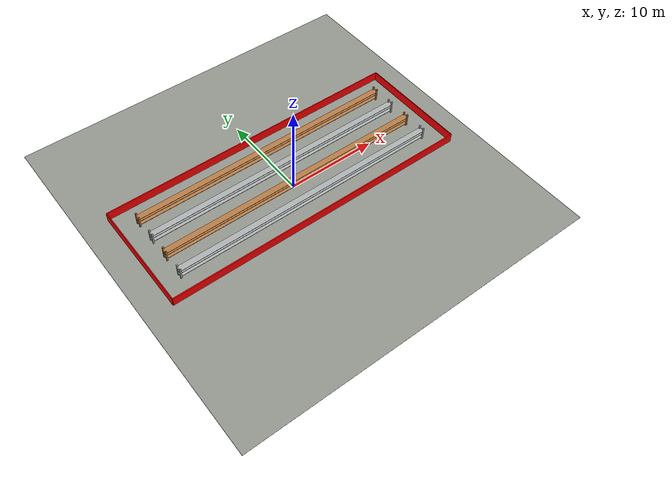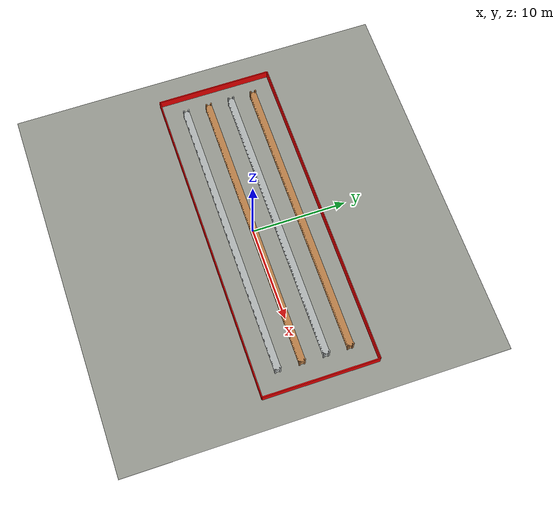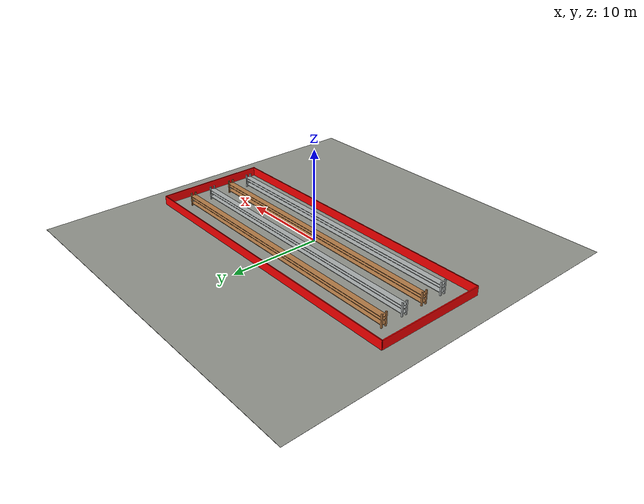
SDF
<?xml version="1.0"?>
<sdf version="1.7">
  <world name="greenhouse">
    <!-- Physics -->
    <physics type="ode">
      <real_time_factor>1.0</real_time_factor>
      <max_step_size>0.001</max_step_size>
    </physics>

    <plugin filename="ignition-gazebo-contact-system" name="gz::sim::systems::Contact" />
    <plugin filename="ignition-gazebo-imu-system" name="gz::sim::systems::Imu" />
    <plugin filename="ignition-gazebo-physics-system" name="gz::sim::systems::Physics" />
    <plugin filename="ignition-gazebo-scene-broadcaster-system"
      name="gz::sim::systems::SceneBroadcaster" />
    <plugin filename="ignition-gazebo-sensors-system" name="gz::sim::systems::Sensors" />
    <plugin filename="ignition-gazebo-user-commands-system" name="gz::sim::systems::UserCommands" />

    <!-- Sunlight for Gazebo Sim. Avoids depending on an external model://sun asset. -->
    <light name="sun" type="directional">
      <cast_shadows>true</cast_shadows>
      <pose>0 0 10 0 0 0</pose>
      <diffuse>0.8 0.8 0.8 1</diffuse>
      <specular>0.2 0.2 0.2 1</specular>
      <attenuation>
        <range>1000</range>
        <constant>0.9</constant>
        <linear>0.01</linear>
        <quadratic>0.001</quadratic>
      </attenuation>
      <direction>-0.5 0.1 -0.9</direction>
    </light>

    <!-- Optional: Remove default flat ground plane if z-fighting occurs -->
    <model name="my_floor">
      <static>true</static>
      <pose>0 0 -0.01 0 0 0</pose>
      <link name="floor_link">
        <collision name="floor_collision">
          <geometry>
            <box>
              <size>40 40 0.02</size>
            </box>
          </geometry>
        </collision>
        <visual name="floor_visual">
          <geometry>
            <box>
              <size>40 40 0.02</size>
            </box>
          </geometry>
          <material>
            <ambient>0.45 0.46 0.44 1</ambient>
            <diffuse>0.58 0.59 0.56 1</diffuse>
            <specular>0.08 0.08 0.08 1</specular>
          </material>
        </visual>
      </link>
    </model>

    <!-- Shelf 1 -->
    <include>
      <name>shelf_1</name>
      <uri>model://greenhouse_shelf</uri>
      <pose>0.0 0.0 0.0 0 0 0</pose>
    </include>

    <!-- Shelf 2 -->
    <include>
      <name>shelf_2</name>
      <uri>model://greenhouse_shelf_metal</uri>
      <pose>0.0 2.5 0.0 0 0 0</pose>
    </include>

    <!-- Shelf 3 -->
    <include>
      <name>shelf_3</name>
      <uri>model://greenhouse_shelf</uri>
      <pose>0.0 5 0.0 0 0 0</pose>
    </include>

    <!-- Shelf 4 -->
    <include>
      <name>shelf_4</name>
      <uri>model://greenhouse_shelf_metal</uri>
      <pose>0.0 -2.5 0.0 0 0 0</pose>
    </include>

    <!-- North wall -->
    <model name="bbox_north">
      <static>true</static>
      <pose>0 7.325 0.5 0 0 0</pose>
      <link name="link">
        <collision name="collision">
          <geometry>
            <box>
              <size>34.1 0.1 1</size>
            </box>
          </geometry>
        </collision>
        <visual name="visual">
          <geometry>
            <box>
              <size>34.1 0.1 1</size>
            </box>
          </geometry>
          <material>
            <ambient>1 0 0 1</ambient>
            <diffuse>1 0 0 1</diffuse>
          </material>
        </visual>
      </link>
    </model>

    <!-- South wall -->
    <model name="bbox_south">
      <static>true</static>
      <pose>0 -4.825 0.5 0 0 0</pose>
      <link name="link">
        <collision name="collision">
          <geometry>
            <box>
              <size>34.1 0.1 1</size>
            </box>
          </geometry>
        </collision>
        <visual name="visual">
          <geometry>
            <box>
              <size>34.1 0.1 1</size>
            </box>
          </geometry>
          <material>
            <ambient>1 0 0 1</ambient>
            <diffuse>1 0 0 1</diffuse>
          </material>
        </visual>
      </link>
    </model>

    <!-- East wall -->
    <model name="bbox_east">
      <static>true</static>
      <pose>17.05 1.25 0.5 0 0 0</pose>
      <link name="link">
        <collision name="collision">
          <geometry>
            <box>
              <size>0.1 12.15 1</size>
            </box>
          </geometry>
        </collision>
        <visual name="visual">
          <geometry>
            <box>
              <size>0.1 12.15 1</size>
            </box>
          </geometry>
          <material>
            <ambient>1 0 0 1</ambient>
            <diffuse>1 0 0 1</diffuse>
          </material>
        </visual>
      </link>
    </model>

    <!-- West wall -->
    <model name="bbox_west">
      <static>true</static>
      <pose>-17.05 1.25 0.5 0 0 0</pose>
      <link name="link">
        <collision name="collision">
          <geometry>
            <box>
              <size>0.1 12.15 1</size>
            </box>
          </geometry>
        </collision>
        <visual name="visual">
          <geometry>
            <box>
              <size>0.1 12.15 1</size>
            </box>
          </geometry>
          <material>
            <ambient>1 0 0 1</ambient>
            <diffuse>1 0 0 1</diffuse>
          </material>
        </visual>
      </link>
    </model>
  </world>
</sdf>

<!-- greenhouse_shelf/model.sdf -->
<sdf version="1.7">
  <model name="greenhouse_shelf">

    <!-- Shelf won't move -->
    <static>true</static>

    <link name="shelf_link">

      <!-- Original visual mesh, with Gazebo Sim color fallback. -->
      <visual name="shelf_visual">
        <geometry>
          <mesh>
            <uri>model://greenhouse_shelf/meshes/greenhouse_shelf.stl</uri>
            <scale>1 1 1</scale>
          </mesh>
        </geometry>
        <material>
          <ambient>0.58 0.39 0.22 1</ambient>
          <diffuse>0.72 0.49 0.28 1</diffuse>
          <specular>0.08 0.06 0.04 1</specular>
        </material>
      </visual>

      <!-- Collision mesh -->
      <collision name="shelf_collision">
        <geometry>
          <mesh>
            <uri>model://greenhouse_shelf/meshes/greenhouse_shelf.stl</uri>
            <scale>1 1 1</scale>
          </mesh>
        </geometry>
      </collision>

    </link>

  </model>
</sdf>

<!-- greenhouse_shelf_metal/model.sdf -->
<sdf version="1.7">
  <model name="greenhouse_shelf_metal">

    <!-- Shelf won't move -->
    <static>true</static>

    <link name="shelf_link">

      <!-- Original visual mesh, with Gazebo Sim color fallback. -->
      <visual name="shelf_visual">
        <geometry>
          <mesh>
            <uri>model://greenhouse_shelf/meshes/greenhouse_shelf.stl</uri>
            <scale>1 1 1</scale>
          </mesh>
        </geometry>
        <material>
          <ambient>0.42 0.44 0.45 1</ambient>
          <diffuse>0.68 0.70 0.70 1</diffuse>
          <specular>0.35 0.35 0.35 1</specular>
        </material>
      </visual>

      <!-- Collision mesh -->
      <collision name="shelf_collision">
        <geometry>
          <mesh>
            <uri>model://greenhouse_shelf/meshes/greenhouse_shelf.stl</uri>
            <scale>1 1 1</scale>
          </mesh>
        </geometry>
      </collision>

    </link>

  </model>
</sdf>
